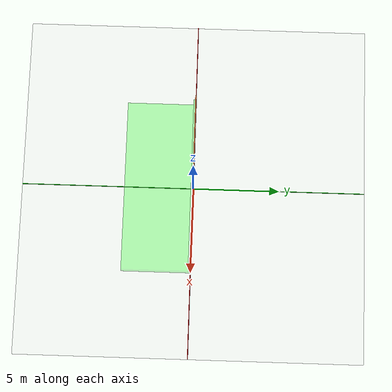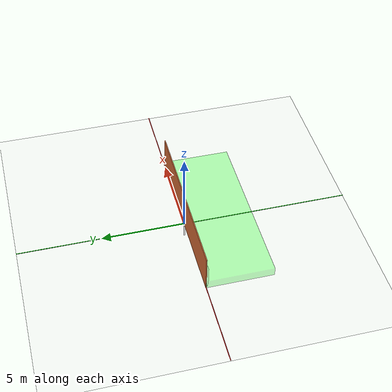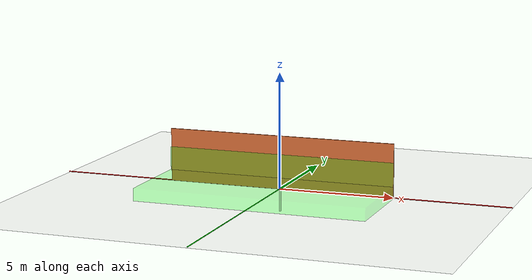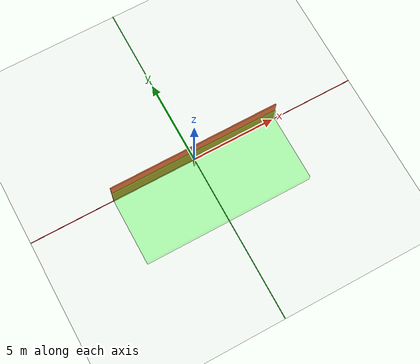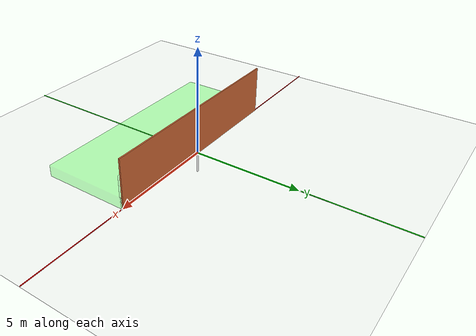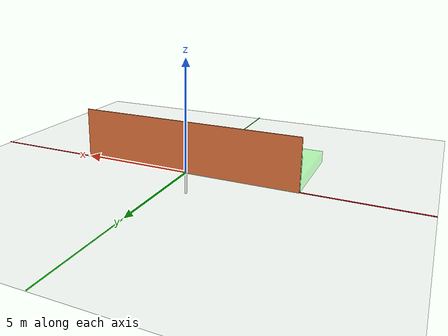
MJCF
<mujoco model="world">
  <compiler angle="radian" coordinate="local" inertiafromgeom="true"/>

  <option timestep="0.002" integrator="RK4" gravity="0 0 -9.81"/>

<default>
  <geom contype="1" conaffinity="1" friction="3 3 3"
        solimp="0.995 0.995 0.001" solref="0.005 0.3"/>
</default>

  <worldbody>
    <!-- Checkered ground plane -->
    <geom name="ground" type="plane" size="10 10 0.1"
          rgba="1 1 1 1" material="checkerboard"/>

<!-- Detection zone on far side of wall (behind the wall from rod's perspective) -->
      <geom name="far_side_detector" type="box" size="5 2 0.5"
            pos="0 -2 0.005" rgba="0 1 0 0.3"
            contype="1" conaffinity="1"/>

<!-- Detection zone on wall -->
      <geom name="side_detector" type="box" size="5 0.05 1.5"
            pos="0 -0.08 0" rgba="0 1 0 0.3"
            contype="1" conaffinity="1"/>

    Red X-axis (centered at origin, extends both ways)
    <geom name="x_axis" type="cylinder" size="0.02 10"
          pos="0 0 0.01" rgba="1 0 0 1" euler="0 1.5708 0"
          contype="0" conaffinity="0"/>

    1.5m high rectangular wall
    <geom name="wall" type="box" size="5 0.03 1.15" pos="0 0 1.15" rgba="0.8 0.4 0.2 1"/>

    <!-- Green Y-axis (centered at origin, extends both ways) -->
    <geom name="y_axis" type="cylinder" size="0.02 10"
          pos="0 0 0.01" rgba="0 1 0 1" euler="1.5708 0 0"
          contype="0" conaffinity="0"/>

    <!-- Falling cylindrical rod -->
    <body name="rod" pos="0 0 0">
      <freejoint name="rod_joint"/>
      <geom name="rod_geom" type="cylinder" size="0.05 0.96"
            rgba="1 1 1 1" mass="2"/>
      <inertial pos="0 0 0" mass="2" diaginertia="0.167 0.167 0.0025"/>
    </body>

    <!-- Light source -->
    <light directional="true" ambient="0.2 0.2 0.2" diffuse="0.8 0.8 0.8"
           specular="0.3 0.3 0.3" castshadow="false" pos="0 0 20" dir="0 0 -1"/>
  </worldbody>

  <asset>
    <!-- Checkered texture with bigger squares -->
    <texture name="checker_texture" type="2d" builtin="checker"
             rgb1="0.3 0.3 0.3" rgb2="0.5 0.5 0.5" width="512" height="512"/>

    <!-- Material with bigger squares -->
    <material name="checkerboard" texture="checker_texture"
              texrepeat="2 2" texuniform="true" reflectance="0.1"/>
  </asset>

  <visual>
      <global offwidth="1280" offheight="720"/>
  </visual>

  <statistic extent="10" center="0 0 1"/>
</mujoco>
